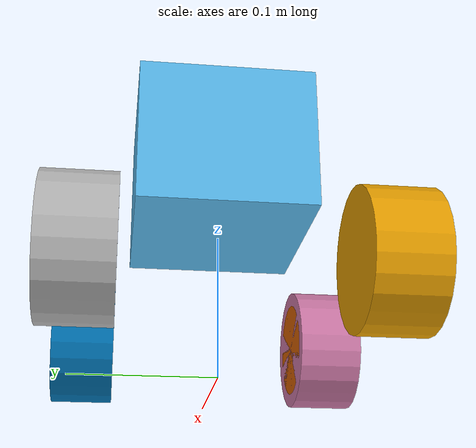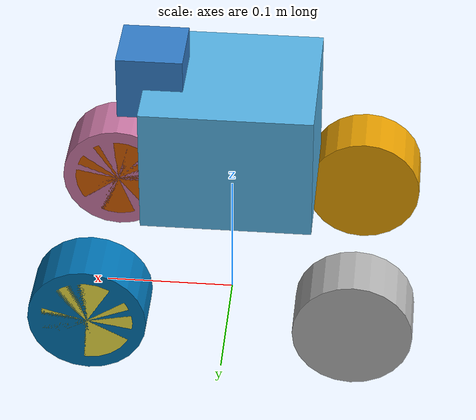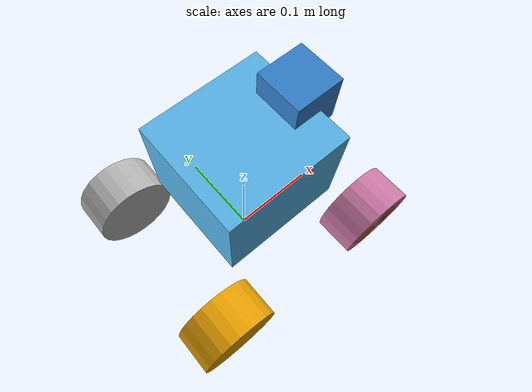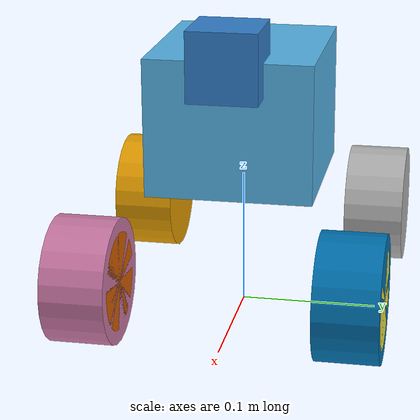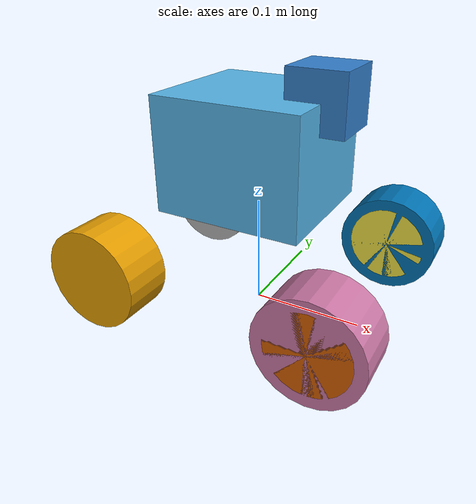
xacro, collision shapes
<?xml version="1.0"?>
<robot xmlns:xacro="http://www.ros.org/wiki/xacro" name="limo_with_front_cam_imu">
  <xacro:arg name="sensor_namespace" default="limo"/>
  <xacro:include filename="$(find simple_rbt)/model/limo/urdf/limo_ackerman.xacro"/>
  <xacro:include filename="$(find simple_rbt)/model/sensor/simple_front_cam_imu/model.xacro"/>
  <xacro:simple_front_cam_imu parent_link="base_link" xyz="0.06 0.0 0.05" rpy="0 0 0" sensor_namespace="$(arg sensor_namespace)" />
</robot>

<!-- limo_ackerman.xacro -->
<robot name="limo_ackerman" xmlns:xacro="http://ros.org/wiki/xacro">

    <xacro:arg name="robot_namespace" default="/" />
    <xacro:include filename="$(find simple_rbt)/model/limo/urdf/limo_xacro.xacro" />
    <xacro:include filename="$(find simple_rbt)/model/limo/urdf/limo_steering_hinge.xacro" />
    <xacro:include filename="$(find simple_rbt)/model/limo/urdf/limo_ackerman.gazebo" />

    <!-- Variables -->
    <xacro:property name="M_PI" value="3.14159"/>

    <!-- Vehicle Geometries -->
    <xacro:property name="base_x_size" value="0.13" />
    <xacro:property name="base_y_size" value="0.12" />
    <xacro:property name="base_z_size" value="0.10" />

    <xacro:property name="wheelbase" value="0.2"/>
    <xacro:property name="track" value="0.14"/>
    <xacro:property name="wheel_vertical_offset" value="-0.100998" />
    <xacro:property name="base_mass" value="2.1557"/>

    <xacro:property name="wheel_length" value="0.045" />
    <xacro:property name="wheel_radius" value="0.045" />
    <link name="base_footprint"/>

    <joint name="base_joint" type="fixed">
    <parent link="base_footprint"/>
    <child link="base_link"/>
    <origin xyz="0.0 0.0 0.15" rpy="0 0 0"/>
    </joint>
    <!-- Base link -->
    <link name="base_link">
        <visual>
            <origin xyz="0 0 -0.15" rpy="0 0 1.57" />
            <geometry>
                <mesh filename="package://simple_rbt/model/limo/meshes/limo_base.dae" scale="1 1 1"/>
            </geometry>
        </visual>
        <collision>
            <origin xyz="0 0 0" rpy="0 0 0" />
          <geometry>
              <box size="${base_x_size} ${base_y_size} ${base_z_size}"/>
          </geometry>
        </collision>
    </link>

    <link name="inertial_link">
        <inertial>
            <origin xyz="0.0 0.0 0.0" />
            <mass value="${base_mass}" />
            <inertia ixx="0.24" ixy="0" ixz="0"
                     iyy="0.96" iyz="0"
                     izz="0.96" />
        </inertial>
    </link>

    <joint name="inertial_joint" type="fixed">
        <origin xyz="0 0 0" rpy="0 0 0" />
        <parent link="base_link" />
        <child link="inertial_link" />
    </joint>

    <xacro:limo_left_steering_hinge parent_prefix="base_link" wheel_prefix="left_steering_hinge">
        <origin xyz="${wheelbase/2} ${track/2} ${wheel_vertical_offset}" rpy="0 0  0" />
    </xacro:limo_left_steering_hinge>

    <xacro:limo_right_steering_hinge parent_prefix="base_link" wheel_prefix="right_steering_hinge">
        <origin xyz="${wheelbase/2} ${-track/2} ${wheel_vertical_offset}" rpy="${M_PI} 0 0" />
    </xacro:limo_right_steering_hinge>

    <link name="rear_left_wheel_link">
        <inertial>
            <origin xyz="0 0 0" />
            <mass value="0.5" />
            <inertia ixx="0.01055" ixy="0" ixz="0" iyy="0.00075" iyz="0" izz="0.01055" />
        </inertial>
        <visual>
            <origin xyz="0 0 0" rpy="0 0 0" />
            <geometry>
                <mesh filename="package://simple_rbt/model/limo/meshes/limo_wheel.dae" />
            </geometry>
        </visual>
        <collision>
            <origin xyz="0 ${wheel_length/2} 0" rpy="1.57 0 0" />
          <geometry>
              <cylinder length="${wheel_length}" radius="${wheel_radius}" />
          </geometry>
        </collision>
    </link>
    <joint name="rear_left_wheel" type="continuous">
        <parent link="base_link"/>
        <child link="rear_left_wheel_link"/>
        <origin xyz="${-wheelbase/2} ${track/2} ${wheel_vertical_offset}" rpy="0 0 0" />
        <axis xyz="0 1 0"/>
    </joint>

    <link name="rear_right_wheel_link">
        <inertial>
            <origin xyz="0 0 0" />
            <mass value="0.5" />
            <inertia ixx="0.01055" ixy="0" ixz="0" iyy="0.00075" iyz="0" izz="0.01055" />
        </inertial>
        <visual>
            <origin xyz="0 0 0" rpy="0 0 0" />
            <geometry>
                <mesh filename="package://simple_rbt/model/limo/meshes/limo_wheel.dae" />
            </geometry>
        </visual>
            <collision>
                <origin xyz="0 ${wheel_length/2} 0" rpy="1.57 0 0" />
              <geometry>
                  <cylinder length="${wheel_length}" radius="${wheel_radius}" />
              </geometry>
            </collision>
        </link>

        <joint name="rear_right_wheel" type="continuous">
            <parent link="base_link"/>
            <child link="rear_right_wheel_link"/>
            <origin xyz="${-wheelbase/2} ${-track/2} ${wheel_vertical_offset}" rpy="${M_PI} 0 0" />
            <axis xyz="0 -1 0"/>
        </joint>
</robot>

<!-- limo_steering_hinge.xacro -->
<robot name="limo_steering_hinge" xmlns:xacro="http://ros.org/wiki/xacro">

    <xacro:macro name="limo_left_steering_hinge" params="parent_prefix wheel_prefix *joint_pose">
        <link name="${wheel_prefix}">
            <inertial>
              <mass value="0.25" />
              <inertia ixx="0.00525" ixy="0" ixz="0" iyy="0.00035" iyz="0" izz="0.00525" />
              <origin xyz="0 0 0" />

            </inertial>
            <visual>
                <origin xyz="0 0 0" rpy="0 0 0" />
                <geometry>
                  <cylinder length="0.0001" radius="0.0001" />
                </geometry>
            </visual>
            <collision>
              <origin xyz="0 ${wheel_length/2} 0" rpy="1.57 0 0" />
              <geometry>
                  <cylinder length="${wheel_length}" radius="${wheel_radius-0.01}" />
              </geometry>
            </collision>
        </link>

        <joint name="${wheel_prefix}_wheel" type="revolute">
            <parent link="${parent_prefix}"/>
            <child link="${wheel_prefix}"/>
            <xacro:insert_block name="joint_pose"/>
            <axis xyz="0 0 1" />
            <limit lower="-0.523598767" upper="0.523598767" effort="5" velocity="0.5" />
            <dynamics damping="1.0" friction="2.0"/>

        </joint>

        <link name="front_left_wheel_link">
          <inertial>
            <mass value="0.25" />
            <inertia ixx="0.00525" ixy="0" ixz="0" iyy="0.00035" iyz="0" izz="0.00525" />
            <origin xyz="0 0 0" />

          </inertial>
          <visual>
              <origin xyz="0 0 0" rpy="0 0 0" />
              <geometry>
                  <mesh filename="package://simple_rbt/model/limo/meshes/limo_wheel.dae" />
              </geometry>
          </visual>
          <collision>
            <origin xyz="0 ${wheel_length/2} 0" rpy="1.57 0 0" />
            <geometry>
                <cylinder length="${wheel_length}" radius="${wheel_radius}" />
            </geometry>
          </collision>
      </link>

      <joint name="front_left_wheel" type="continuous">
          <parent link="${wheel_prefix}"/>
          <child link="front_left_wheel_link"/>
          <origin xyz="0 0 0" rpy="0 0  0" />
          <axis xyz="0 1 0"/>
      </joint>
    </xacro:macro>

    <xacro:macro name="limo_right_steering_hinge" params="parent_prefix wheel_prefix *joint_pose">
        <link name="${wheel_prefix}">
          <inertial>
            <mass value="0.25" />
            <inertia ixx="0.00525" ixy="0" ixz="0" iyy="0.00035" iyz="0" izz="0.00525" />
            <origin xyz="0 0 0" />

          </inertial>
            <visual>
                <origin xyz="0 0 0" rpy="0 0 0" />
                <geometry>
                  <cylinder length="0.0001" radius="0.0001" />
                </geometry>
            </visual>
            <collision>
              <origin xyz="0 ${wheel_length/2} 0" rpy="1.57 0 0" />
              <geometry>
                  <cylinder length="${wheel_length}" radius="${wheel_radius-0.01}" />
              </geometry>
            </collision>
        </link>

        <joint name="${wheel_prefix}_wheel" type="revolute">
            <parent link="${parent_prefix}"/>
            <child link="${wheel_prefix}"/>
            <xacro:insert_block name="joint_pose"/>
            <axis xyz="0 0 -1"/>
            <limit lower="-0.523598767" upper="0.523598767" effort="5" velocity="0.5" />
            <dynamics damping="1.0" friction="2.0"/>
        </joint>

        <link name="front_right_wheel_link">
          <inertial>
            <mass value="0.25" />
            <inertia ixx="0.00525" ixy="0" ixz="0" iyy="0.00035" iyz="0" izz="0.00525" />
            <origin xyz="0 0 0" />
          </inertial>
          <visual>
              <origin xyz="0 0 0" rpy="0 0 0" />
              <geometry>
                  <mesh filename="package://simple_rbt/model/limo/meshes/limo_wheel.dae" />
              </geometry>
          </visual>
          <collision>
            <origin xyz="0 ${wheel_length/2} 0" rpy="1.57 0 0" />
            <geometry>
                <cylinder length="${wheel_length}" radius="${wheel_radius}" />
            </geometry>
          </collision>
      </link>

      <joint name="front_right_wheel" type="continuous">
          <parent link="${wheel_prefix}"/>
          <child link="front_right_wheel_link"/>
          <origin xyz="0 0 0" rpy="0 0  0" />
          <axis xyz="0 -1 0"/>
      </joint>
    </xacro:macro>
</robot>

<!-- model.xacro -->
<robot xmlns:xacro="http://www.ros.org/wiki/xacro">

    <xacro:macro name="simple_front_cam_imu" params="parent_link xyz rpy sensor_namespace">

        <link name="camera_link">
            <inertial>
                <mass value="0.15"/>
                <inertia ixx="0.0001" ixy="0.0" ixz="0.0" iyy="0.0001" iyz="0.0" izz="0.0001"/>
            </inertial>

            <visual name="camera_visual">
                <geometry>
                    <box size="0.05 0.05 0.05"/>
                </geometry>
                <material name="blue_cam">
                    <color rgba="0.2 0.5 0.8 1"/>
                </material>
            </visual>

            <collision name="camera_collision">
                <geometry>
                    <box size="0.05 0.05 0.05"/>
                </geometry>
            </collision>
        </link>

        <link name="imu_link">
            <inertial>
                <mass value="0.01"/>
                <inertia ixx="1e-6" ixy="0.0" ixz="0.0" iyy="1e-6" iyz="0.0" izz="1e-6"/>
            </inertial>

            <visual name="imu_visual">
                <geometry>
                    <box size="0.01 0.01 0.01"/>
                </geometry>
                <material name="red_imu">
                    <color rgba="0.8 0.2 0.2 1"/>
                </material>
            </visual>
        </link>

        <joint name="camera_mount_joint" type="fixed">
            <parent link="${parent_link}"/>
            <child link="camera_link"/>
            <origin xyz="${xyz}" rpy="${rpy}"/>
        </joint>

        <joint name="camera_imu_joint" type="fixed">
            <parent link="camera_link"/>
            <child link="imu_link"/>
            <origin xyz="0 0 -0.06" rpy="0 0 0"/>
        </joint>

        <gazebo reference="camera_link">
            <sensor name="front_camera" type="camera">
                <pose>0 0 0 0 0 0</pose>
                <always_on>true</always_on>
                <update_rate>30</update_rate>
                <visualize>true</visualize>

                <camera>
                    <horizontal_fov>1.5708</horizontal_fov> <image>
                        <width>640</width>
                        <height>480</height>
                        <format>R8G8B8</format>
                    </image>
                    <clip>
                        <near>0.05</near>
                        <far>50.0</far>
                    </clip>
                </camera>

                <plugin name="camera_controller" filename="libgazebo_ros_camera.so">
                    <robotNamespace>${sensor_namespace}</robotNamespace>
                    <cameraName>camera</cameraName>
                    <imageTopicName>image_raw</imageTopicName>
                    <cameraInfoTopicName>camera_info</cameraInfoTopicName>
                    <frameName>camera_link</frameName>
                    <updateRate>30.0</updateRate>
                    <alwaysOn>true</alwaysOn>
                </plugin>
            </sensor>

            <material>Gazebo/Blue</material>
        </gazebo>

        <gazebo reference="imu_link">
            <sensor name="imu_sensor" type="imu">
                <pose>0 0 0 0 0 0</pose>
                <always_on>true</always_on>
                <update_rate>200</update_rate>
                <visualize>true</visualize>

                <plugin filename="libgazebo_ros_imu_sensor.so" name="imu_plugin">
                    <robotNamespace>${sensor_namespace}</robotNamespace>
                    <topicName>camera/imu</topicName>
                    <bodyName>imu_link</bodyName>
                    <updateRateHZ>200.0</updateRateHZ>
                    <gaussianNoise>0.0</gaussianNoise>
                    <xyzOffset>0 0 0</xyzOffset>
                    <rpyOffset>0 0 0</rpyOffset>
                    <frameName>imu_link</frameName>
                </plugin>
            </sensor>

            <material>Gazebo/Red</material>
        </gazebo>

    </xacro:macro>

</robot>
